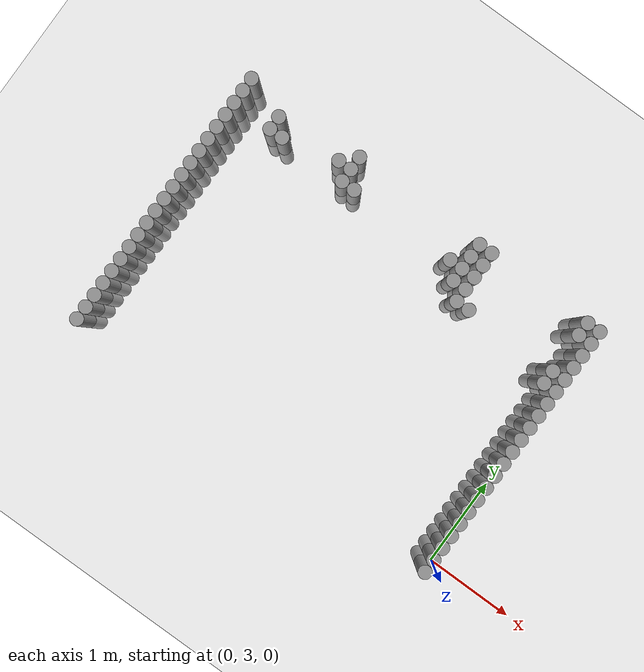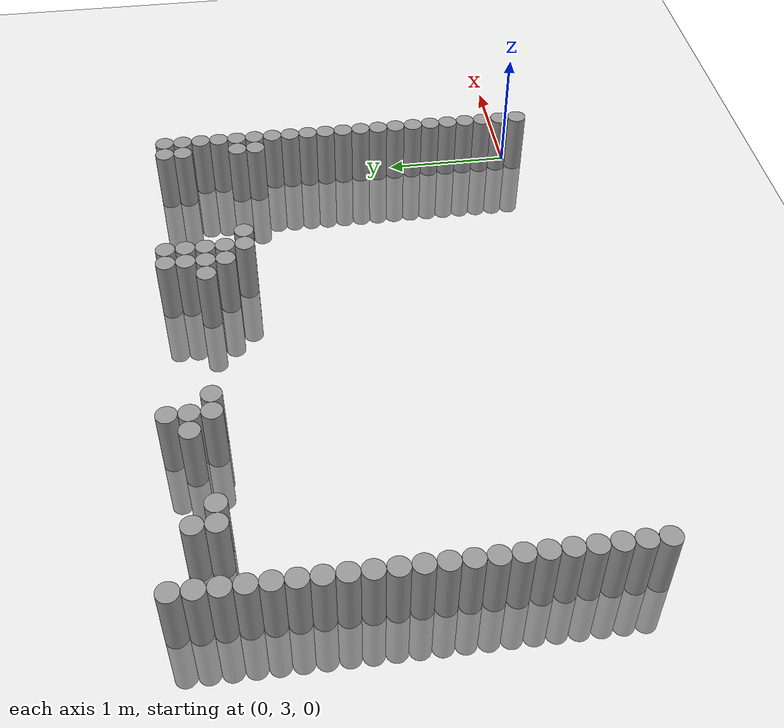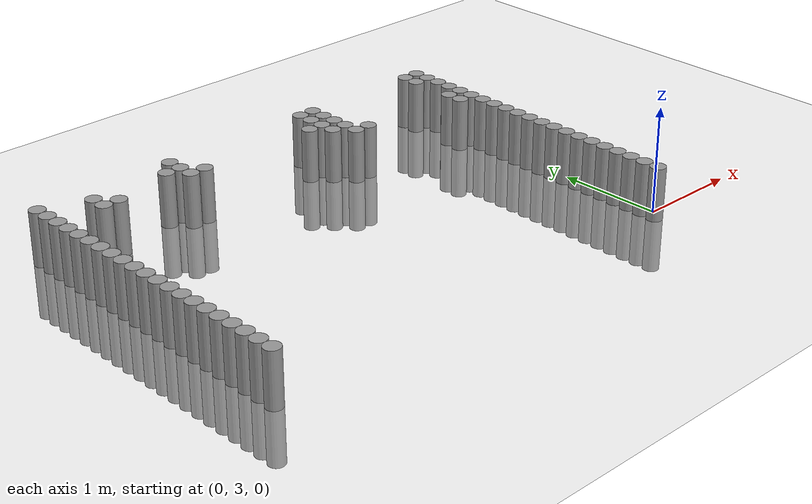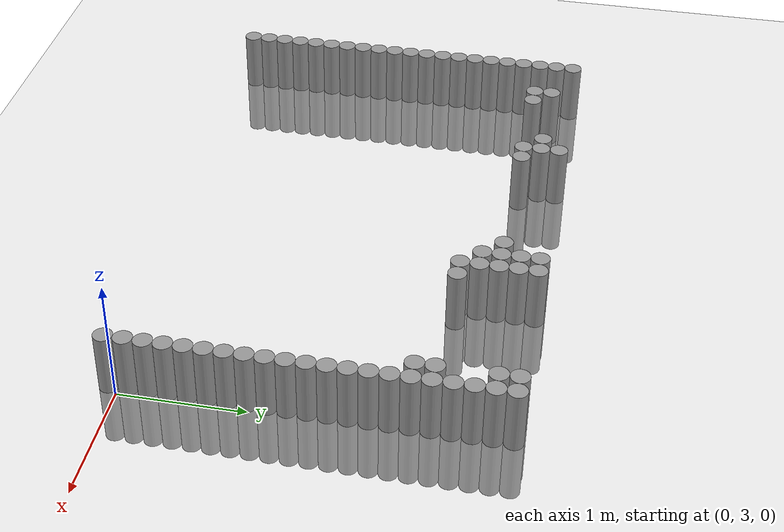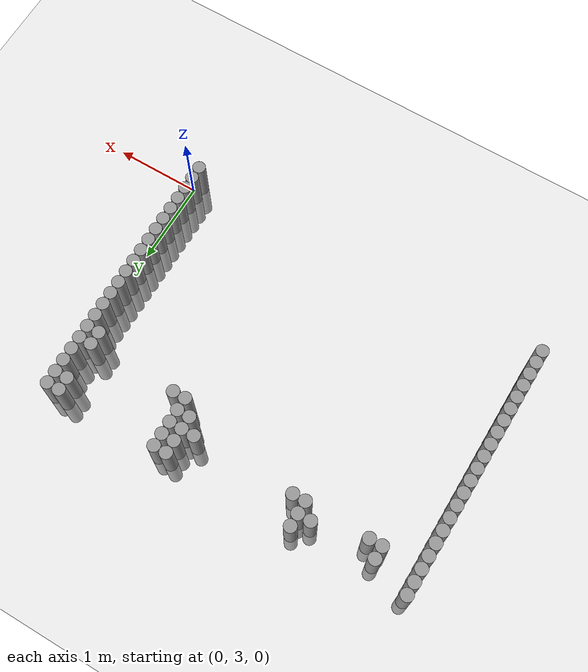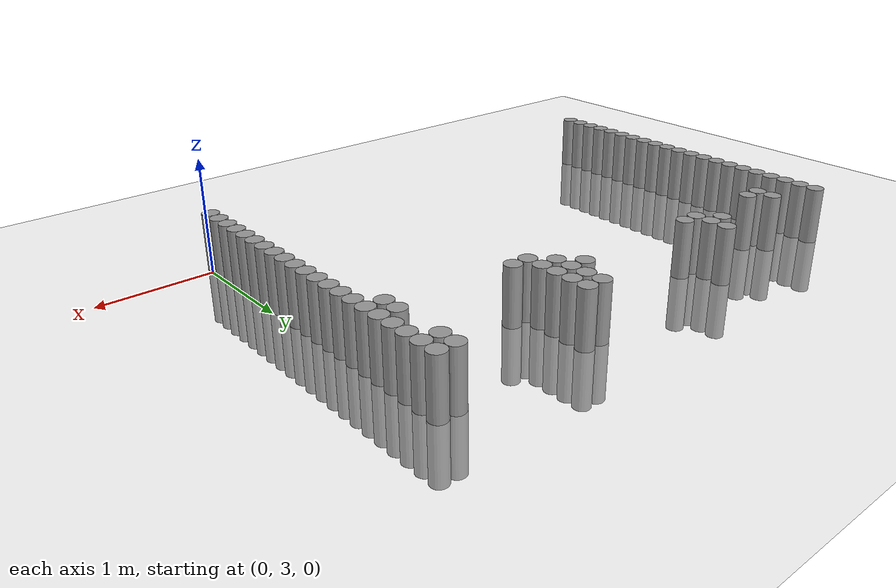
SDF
<sdf version="1.6">
 <world name="default">
  <model name="ground_plane">
   <static>1</static>
   <link name="link">
    <collision name="collision">
     <geometry><plane><normal>0 0 1</normal><size>100 100</size></plane></geometry>
     <surface><friction><ode><mu>100</mu><mu2>50</mu2></ode></friction></surface>
    </collision>
    <visual name="visual">
     <cast_shadows>0</cast_shadows>
     <geometry><plane><normal>0 0 1</normal><size>100 100</size></plane></geometry>
     <material>
      <script><uri>file://media/materials/scripts/gazebo.material</uri><name>Gazebo/Grey</name></script>
     </material>
    </visual>
   </link>
  </model>
  <model name="unit_cylinder_66">
   <pose>-0.075000 2.925000 0.000000 0.000000 0.000000 0.000000</pose>
   <link name="link">
    <inertial>
     <mass>1</mass>
     <inertia><ixx>0.145833</ixx><ixy>0</ixy><ixz>0</ixz><iyy>0.145833</iyy><iyz>0</iyz><izz>0.125</izz></inertia>
    </inertial>
    <collision name="collision">
     <geometry><cylinder><radius>0.075000</radius><length>1</length></cylinder></geometry>
    </collision>
    <visual name="visual">
     <geometry><cylinder><radius>0.075000</radius><length>1</length></cylinder></geometry>
     <material>
      <script><name>Gazebo/Grey</name><uri>file://media/materials/scripts/gazebo.material</uri></script>
     </material>
    </visual>
   </link>
  </model>
  <model name="unit_cylinder_67">
   <pose>-4.425000 2.925000 0.000000 0.000000 0.000000 0.000000</pose>
   <link name="link">
    <inertial>
     <mass>1</mass>
     <inertia><ixx>0.145833</ixx><ixy>0</ixy><ixz>0</ixz><iyy>0.145833</iyy><iyz>0</iyz><izz>0.125</izz></inertia>
    </inertial>
    <collision name="collision">
     <geometry><cylinder><radius>0.075000</radius><length>1</length></cylinder></geometry>
    </collision>
    <visual name="visual">
     <geometry><cylinder><radius>0.075000</radius><length>1</length></cylinder></geometry>
     <material>
      <script><name>Gazebo/Grey</name><uri>file://media/materials/scripts/gazebo.material</uri></script>
     </material>
    </visual>
   </link>
  </model>
  <model name="unit_cylinder_68">
   <pose>-0.075000 3.075000 0.000000 0.000000 0.000000 0.000000</pose>
   <link name="link">
    <inertial>
     <mass>1</mass>
     <inertia><ixx>0.145833</ixx><ixy>0</ixy><ixz>0</ixz><iyy>0.145833</iyy><iyz>0</iyz><izz>0.125</izz></inertia>
    </inertial>
    <collision name="collision">
     <geometry><cylinder><radius>0.075000</radius><length>1</length></cylinder></geometry>
    </collision>
    <visual name="visual">
     <geometry><cylinder><radius>0.075000</radius><length>1</length></cylinder></geometry>
     <material>
      <script><name>Gazebo/Grey</name><uri>file://media/materials/scripts/gazebo.material</uri></script>
     </material>
    </visual>
   </link>
  </model>
  <model name="unit_cylinder_69">
   <pose>-4.425000 3.075000 0.000000 0.000000 0.000000 0.000000</pose>
   <link name="link">
    <inertial>
     <mass>1</mass>
     <inertia><ixx>0.145833</ixx><ixy>0</ixy><ixz>0</ixz><iyy>0.145833</iyy><iyz>0</iyz><izz>0.125</izz></inertia>
    </inertial>
    <collision name="collision">
     <geometry><cylinder><radius>0.075000</radius><length>1</length></cylinder></geometry>
    </collision>
    <visual name="visual">
     <geometry><cylinder><radius>0.075000</radius><length>1</length></cylinder></geometry>
     <material>
      <script><name>Gazebo/Grey</name><uri>file://media/materials/scripts/gazebo.material</uri></script>
     </material>
    </visual>
   </link>
  </model>
  <model name="unit_cylinder_70">
   <pose>-0.075000 3.225000 0.000000 0.000000 0.000000 0.000000</pose>
   <link name="link">
    <inertial>
     <mass>1</mass>
     <inertia><ixx>0.145833</ixx><ixy>0</ixy><ixz>0</ixz><iyy>0.145833</iyy><iyz>0</iyz><izz>0.125</izz></inertia>
    </inertial>
    <collision name="collision">
     <geometry><cylinder><radius>0.075000</radius><length>1</length></cylinder></geometry>
    </collision>
    <visual name="visual">
     <geometry><cylinder><radius>0.075000</radius><length>1</length></cylinder></geometry>
     <material>
      <script><name>Gazebo/Grey</name><uri>file://media/materials/scripts/gazebo.material</uri></script>
     </material>
    </visual>
   </link>
  </model>
  <model name="unit_cylinder_71">
   <pose>-4.425000 3.225000 0.000000 0.000000 0.000000 0.000000</pose>
   <link name="link">
    <inertial>
     <mass>1</mass>
     <inertia><ixx>0.145833</ixx><ixy>0</ixy><ixz>0</ixz><iyy>0.145833</iyy><iyz>0</iyz><izz>0.125</izz></inertia>
    </inertial>
    <collision name="collision">
     <geometry><cylinder><radius>0.075000</radius><length>1</length></cylinder></geometry>
    </collision>
    <visual name="visual">
     <geometry><cylinder><radius>0.075000</radius><length>1</length></cylinder></geometry>
     <material>
      <script><name>Gazebo/Grey</name><uri>file://media/materials/scripts/gazebo.material</uri></script>
     </material>
    </visual>
   </link>
  </model>
  <model name="unit_cylinder_72">
   <pose>-0.075000 3.375000 0.000000 0.000000 0.000000 0.000000</pose>
   <link name="link">
    <inertial>
     <mass>1</mass>
     <inertia><ixx>0.145833</ixx><ixy>0</ixy><ixz>0</ixz><iyy>0.145833</iyy><iyz>0</iyz><izz>0.125</izz></inertia>
    </inertial>
    <collision name="collision">
     <geometry><cylinder><radius>0.075000</radius><length>1</length></cylinder></geometry>
    </collision>
    <visual name="visual">
     <geometry><cylinder><radius>0.075000</radius><length>1</length></cylinder></geometry>
     <material>
      <script><name>Gazebo/Grey</name><uri>file://media/materials/scripts/gazebo.material</uri></script>
     </material>
    </visual>
   </link>
  </model>
  <model name="unit_cylinder_73">
   <pose>-4.425000 3.375000 0.000000 0.000000 0.000000 0.000000</pose>
   <link name="link">
    <inertial>
     <mass>1</mass>
     <inertia><ixx>0.145833</ixx><ixy>0</ixy><ixz>0</ixz><iyy>0.145833</iyy><iyz>0</iyz><izz>0.125</izz></inertia>
    </inertial>
    <collision name="collision">
     <geometry><cylinder><radius>0.075000</radius><length>1</length></cylinder></geometry>
    </collision>
    <visual name="visual">
     <geometry><cylinder><radius>0.075000</radius><length>1</length></cylinder></geometry>
     <material>
      <script><name>Gazebo/Grey</name><uri>file://media/materials/scripts/gazebo.material</uri></script>
     </material>
    </visual>
   </link>
  </model>
  <model name="unit_cylinder_74">
   <pose>-0.075000 3.525000 0.000000 0.000000 0.000000 0.000000</pose>
   <link name="link">
    <inertial>
     <mass>1</mass>
     <inertia><ixx>0.145833</ixx><ixy>0</ixy><ixz>0</ixz><iyy>0.145833</iyy><iyz>0</iyz><izz>0.125</izz></inertia>
    </inertial>
    <collision name="collision">
     <geometry><cylinder><radius>0.075000</radius><length>1</length></cylinder></geometry>
    </collision>
    <visual name="visual">
     <geometry><cylinder><radius>0.075000</radius><length>1</length></cylinder></geometry>
     <material>
      <script><name>Gazebo/Grey</name><uri>file://media/materials/scripts/gazebo.material</uri></script>
     </material>
    </visual>
   </link>
  </model>
  <model name="unit_cylinder_75">
   <pose>-4.425000 3.525000 0.000000 0.000000 0.000000 0.000000</pose>
   <link name="link">
    <inertial>
     <mass>1</mass>
     <inertia><ixx>0.145833</ixx><ixy>0</ixy><ixz>0</ixz><iyy>0.145833</iyy><iyz>0</iyz><izz>0.125</izz></inertia>
    </inertial>
    <collision name="collision">
     <geometry><cylinder><radius>0.075000</radius><length>1</length></cylinder></geometry>
    </collision>
    <visual name="visual">
     <geometry><cylinder><radius>0.075000</radius><length>1</length></cylinder></geometry>
     <material>
      <script><name>Gazebo/Grey</name><uri>file://media/materials/scripts/gazebo.material</uri></script>
     </material>
    </visual>
   </link>
  </model>
  <model name="unit_cylinder_76">
   <pose>-0.075000 3.675000 0.000000 0.000000 0.000000 0.000000</pose>
   <link name="link">
    <inertial>
     <mass>1</mass>
     <inertia><ixx>0.145833</ixx><ixy>0</ixy><ixz>0</ixz><iyy>0.145833</iyy><iyz>0</iyz><izz>0.125</izz></inertia>
    </inertial>
    <collision name="collision">
     <geometry><cylinder><radius>0.075000</radius><length>1</length></cylinder></geometry>
    </collision>
    <visual name="visual">
     <geometry><cylinder><radius>0.075000</radius><length>1</length></cylinder></geometry>
     <material>
      <script><name>Gazebo/Grey</name><uri>file://media/materials/scripts/gazebo.material</uri></script>
     </material>
    </visual>
   </link>
  </model>
  <model name="unit_cylinder_77">
   <pose>-4.425000 3.675000 0.000000 0.000000 0.000000 0.000000</pose>
   <link name="link">
    <inertial>
     <mass>1</mass>
     <inertia><ixx>0.145833</ixx><ixy>0</ixy><ixz>0</ixz><iyy>0.145833</iyy><iyz>0</iyz><izz>0.125</izz></inertia>
    </inertial>
    <collision name="collision">
     <geometry><cylinder><radius>0.075000</radius><length>1</length></cylinder></geometry>
    </collision>
    <visual name="visual">
     <geometry><cylinder><radius>0.075000</radius><length>1</length></cylinder></geometry>
     <material>
      <script><name>Gazebo/Grey</name><uri>file://media/materials/scripts/gazebo.material</uri></script>
     </material>
    </visual>
   </link>
  </model>
  <model name="unit_cylinder_78">
   <pose>-0.075000 3.825000 0.000000 0.000000 0.000000 0.000000</pose>
   <link name="link">
    <inertial>
     <mass>1</mass>
     <inertia><ixx>0.145833</ixx><ixy>0</ixy><ixz>0</ixz><iyy>0.145833</iyy><iyz>0</iyz><izz>0.125</izz></inertia>
    </inertial>
    <collision name="collision">
     <geometry><cylinder><radius>0.075000</radius><length>1</length></cylinder></geometry>
    </collision>
    <visual name="visual">
     <geometry><cylinder><radius>0.075000</radius><length>1</length></cylinder></geometry>
     <material>
      <script><name>Gazebo/Grey</name><uri>file://media/materials/scripts/gazebo.material</uri></script>
     </material>
    </visual>
   </link>
  </model>
  <model name="unit_cylinder_79">
   <pose>-4.425000 3.825000 0.000000 0.000000 0.000000 0.000000</pose>
   <link name="link">
    <inertial>
     <mass>1</mass>
     <inertia><ixx>0.145833</ixx><ixy>0</ixy><ixz>0</ixz><iyy>0.145833</iyy><iyz>0</iyz><izz>0.125</izz></inertia>
    </inertial>
    <collision name="collision">
     <geometry><cylinder><radius>0.075000</radius><length>1</length></cylinder></geometry>
    </collision>
    <visual name="visual">
     <geometry><cylinder><radius>0.075000</radius><length>1</length></cylinder></geometry>
     <material>
      <script><name>Gazebo/Grey</name><uri>file://media/materials/scripts/gazebo.material</uri></script>
     </material>
    </visual>
   </link>
  </model>
  <model name="unit_cylinder_80">
   <pose>-0.075000 3.975000 0.000000 0.000000 0.000000 0.000000</pose>
   <link name="link">
    <inertial>
     <mass>1</mass>
     <inertia><ixx>0.145833</ixx><ixy>0</ixy><ixz>0</ixz><iyy>0.145833</iyy><iyz>0</iyz><izz>0.125</izz></inertia>
    </inertial>
    <collision name="collision">
     <geometry><cylinder><radius>0.075000</radius><length>1</length></cylinder></geometry>
    </collision>
    <visual name="visual">
     <geometry><cylinder><radius>0.075000</radius><length>1</length></cylinder></geometry>
     <material>
      <script><name>Gazebo/Grey</name><uri>file://media/materials/scripts/gazebo.material</uri></script>
     </material>
    </visual>
   </link>
  </model>
  <model name="unit_cylinder_81">
   <pose>-4.425000 3.975000 0.000000 0.000000 0.000000 0.000000</pose>
   <link name="link">
    <inertial>
     <mass>1</mass>
     <inertia><ixx>0.145833</ixx><ixy>0</ixy><ixz>0</ixz><iyy>0.145833</iyy><iyz>0</iyz><izz>0.125</izz></inertia>
    </inertial>
    <collision name="collision">
     <geometry><cylinder><radius>0.075000</radius><length>1</length></cylinder></geometry>
    </collision>
    <visual name="visual">
     <geometry><cylinder><radius>0.075000</radius><length>1</length></cylinder></geometry>
     <material>
      <script><name>Gazebo/Grey</name><uri>file://media/materials/scripts/gazebo.material</uri></script>
     </material>
    </visual>
   </link>
  </model>
  <model name="unit_cylinder_82">
   <pose>-0.075000 4.125000 0.000000 0.000000 0.000000 0.000000</pose>
   <link name="link">
    <inertial>
     <mass>1</mass>
     <inertia><ixx>0.145833</ixx><ixy>0</ixy><ixz>0</ixz><iyy>0.145833</iyy><iyz>0</iyz><izz>0.125</izz></inertia>
    </inertial>
    <collision name="collision">
     <geometry><cylinder><radius>0.075000</radius><length>1</length></cylinder></geometry>
    </collision>
    <visual name="visual">
     <geometry><cylinder><radius>0.075000</radius><length>1</length></cylinder></geometry>
     <material>
      <script><name>Gazebo/Grey</name><uri>file://media/materials/scripts/gazebo.material</uri></script>
     </material>
    </visual>
   </link>
  </model>
  <model name="unit_cylinder_83">
   <pose>-4.425000 4.125000 0.000000 0.000000 0.000000 0.000000</pose>
   <link name="link">
    <inertial>
     <mass>1</mass>
     <inertia><ixx>0.145833</ixx><ixy>0</ixy><ixz>0</ixz><iyy>0.145833</iyy><iyz>0</iyz><izz>0.125</izz></inertia>
    </inertial>
    <collision name="collision">
     <geometry><cylinder><radius>0.075000</radius><length>1</length></cylinder></geometry>
    </collision>
    <visual name="visual">
     <geometry><cylinder><radius>0.075000</radius><length>1</length></cylinder></geometry>
     <material>
      <script><name>Gazebo/Grey</name><uri>file://media/materials/scripts/gazebo.material</uri></script>
     </material>
    </visual>
   </link>
  </model>
  <model name="unit_cylinder_84">
   <pose>-0.075000 4.275000 0.000000 0.000000 0.000000 0.000000</pose>
   <link name="link">
    <inertial>
     <mass>1</mass>
     <inertia><ixx>0.145833</ixx><ixy>0</ixy><ixz>0</ixz><iyy>0.145833</iyy><iyz>0</iyz><izz>0.125</izz></inertia>
    </inertial>
    <collision name="collision">
     <geometry><cylinder><radius>0.075000</radius><length>1</length></cylinder></geometry>
    </collision>
    <visual name="visual">
     <geometry><cylinder><radius>0.075000</radius><length>1</length></cylinder></geometry>
     <material>
      <script><name>Gazebo/Grey</name><uri>file://media/materials/scripts/gazebo.material</uri></script>
     </material>
    </visual>
   </link>
  </model>
  <model name="unit_cylinder_85">
   <pose>-4.425000 4.275000 0.000000 0.000000 0.000000 0.000000</pose>
   <link name="link">
    <inertial>
     <mass>1</mass>
     <inertia><ixx>0.145833</ixx><ixy>0</ixy><ixz>0</ixz><iyy>0.145833</iyy><iyz>0</iyz><izz>0.125</izz></inertia>
    </inertial>
    <collision name="collision">
     <geometry><cylinder><radius>0.075000</radius><length>1</length></cylinder></geometry>
    </collision>
    <visual name="visual">
     <geometry><cylinder><radius>0.075000</radius><length>1</length></cylinder></geometry>
     <material>
      <script><name>Gazebo/Grey</name><uri>file://media/materials/scripts/gazebo.material</uri></script>
     </material>
    </visual>
   </link>
  </model>
  <model name="unit_cylinder_86">
   <pose>-0.075000 4.425000 0.000000 0.000000 0.000000 0.000000</pose>
   <link name="link">
    <inertial>
     <mass>1</mass>
     <inertia><ixx>0.145833</ixx><ixy>0</ixy><ixz>0</ixz><iyy>0.145833</iyy><iyz>0</iyz><izz>0.125</izz></inertia>
    </inertial>
    <collision name="collision">
     <geometry><cylinder><radius>0.075000</radius><length>1</length></cylinder></geometry>
    </collision>
    <visual name="visual">
     <geometry><cylinder><radius>0.075000</radius><length>1</length></cylinder></geometry>
     <material>
      <script><name>Gazebo/Grey</name><uri>file://media/materials/scripts/gazebo.material</uri></script>
     </material>
    </visual>
   </link>
  </model>
  <model name="unit_cylinder_87">
   <pose>-4.425000 4.425000 0.000000 0.000000 0.000000 0.000000</pose>
   <link name="link">
    <inertial>
     <mass>1</mass>
     <inertia><ixx>0.145833</ixx><ixy>0</ixy><ixz>0</ixz><iyy>0.145833</iyy><iyz>0</iyz><izz>0.125</izz></inertia>
    </inertial>
    <collision name="collision">
     <geometry><cylinder><radius>0.075000</radius><length>1</length></cylinder></geometry>
    </collision>
    <visual name="visual">
     <geometry><cylinder><radius>0.075000</radius><length>1</length></cylinder></geometry>
     <material>
      <script><name>Gazebo/Grey</name><uri>file://media/materials/scripts/gazebo.material</uri></script>
     </material>
    </visual>
   </link>
  </model>
  <model name="unit_cylinder_88">
   <pose>-0.075000 4.575000 0.000000 0.000000 0.000000 0.000000</pose>
   <link name="link">
    <inertial>
     <mass>1</mass>
     <inertia><ixx>0.145833</ixx><ixy>0</ixy><ixz>0</ixz><iyy>0.145833</iyy><iyz>0</iyz><izz>0.125</izz></inertia>
    </inertial>
    <collision name="collision">
     <geometry><cylinder><radius>0.075000</radius><length>1</length></cylinder></geometry>
    </collision>
    <visual name="visual">
     <geometry><cylinder><radius>0.075000</radius><length>1</length></cylinder></geometry>
     <material>
      <script><name>Gazebo/Grey</name><uri>file://media/materials/scripts/gazebo.material</uri></script>
     </material>
    </visual>
   </link>
  </model>
  <model name="unit_cylinder_89">
   <pose>-4.425000 4.575000 0.000000 0.000000 0.000000 0.000000</pose>
   <link name="link">
    <inertial>
     <mass>1</mass>
     <inertia><ixx>0.145833</ixx><ixy>0</ixy><ixz>0</ixz><iyy>0.145833</iyy><iyz>0</iyz><izz>0.125</izz></inertia>
    </inertial>
    <collision name="collision">
     <geometry><cylinder><radius>0.075000</radius><length>1</length></cylinder></geometry>
    </collision>
    <visual name="visual">
     <geometry><cylinder><radius>0.075000</radius><length>1</length></cylinder></geometry>
     <material>
      <script><name>Gazebo/Grey</name><uri>file://media/materials/scripts/gazebo.material</uri></script>
     </material>
    </visual>
   </link>
  </model>
  <model name="unit_cylinder_90">
   <pose>-0.075000 4.725000 0.000000 0.000000 0.000000 0.000000</pose>
   <link name="link">
    <inertial>
     <mass>1</mass>
     <inertia><ixx>0.145833</ixx><ixy>0</ixy><ixz>0</ixz><iyy>0.145833</iyy><iyz>0</iyz><izz>0.125</izz></inertia>
    </inertial>
    <collision name="collision">
     <geometry><cylinder><radius>0.075000</radius><length>1</length></cylinder></geometry>
    </collision>
    <visual name="visual">
     <geometry><cylinder><radius>0.075000</radius><length>1</length></cylinder></geometry>
     <material>
      <script><name>Gazebo/Grey</name><uri>file://media/materials/scripts/gazebo.material</uri></script>
     </material>
    </visual>
   </link>
  </model>
  <model name="unit_cylinder_91">
   <pose>-4.425000 4.725000 0.000000 0.000000 0.000000 0.000000</pose>
   <link name="link">
    <inertial>
     <mass>1</mass>
     <inertia><ixx>0.145833</ixx><ixy>0</ixy><ixz>0</ixz><iyy>0.145833</iyy><iyz>0</iyz><izz>0.125</izz></inertia>
    </inertial>
    <collision name="collision">
     <geometry><cylinder><radius>0.075000</radius><length>1</length></cylinder></geometry>
    </collision>
    <visual name="visual">
     <geometry><cylinder><radius>0.075000</radius><length>1</length></cylinder></geometry>
     <material>
      <script><name>Gazebo/Grey</name><uri>file://media/materials/scripts/gazebo.material</uri></script>
     </material>
    </visual>
   </link>
  </model>
  <model name="unit_cylinder_92">
   <pose>-0.075000 4.875000 0.000000 0.000000 0.000000 0.000000</pose>
   <link name="link">
    <inertial>
     <mass>1</mass>
     <inertia><ixx>0.145833</ixx><ixy>0</ixy><ixz>0</ixz><iyy>0.145833</iyy><iyz>0</iyz><izz>0.125</izz></inertia>
    </inertial>
    <collision name="collision">
     <geometry><cylinder><radius>0.075000</radius><length>1</length></cylinder></geometry>
    </collision>
    <visual name="visual">
     <geometry><cylinder><radius>0.075000</radius><length>1</length></cylinder></geometry>
     <material>
      <script><name>Gazebo/Grey</name><uri>file://media/materials/scripts/gazebo.material</uri></script>
     </material>
    </visual>
   </link>
  </model>
  <model name="unit_cylinder_93">
   <pose>-4.425000 4.875000 0.000000 0.000000 0.000000 0.000000</pose>
   <link name="link">
    <inertial>
     <mass>1</mass>
     <inertia><ixx>0.145833</ixx><ixy>0</ixy><ixz>0</ixz><iyy>0.145833</iyy><iyz>0</iyz><izz>0.125</izz></inertia>
    </inertial>
    <collision name="collision">
     <geometry><cylinder><radius>0.075000</radius><length>1</length></cylinder></geometry>
    </collision>
    <visual name="visual">
     <geometry><cylinder><radius>0.075000</radius><length>1</length></cylinder></geometry>
     <material>
      <script><name>Gazebo/Grey</name><uri>file://media/materials/scripts/gazebo.material</uri></script>
     </material>
    </visual>
   </link>
  </model>
  <model name="unit_cylinder_94">
   <pose>-0.075000 5.025000 0.000000 0.000000 0.000000 0.000000</pose>
   <link name="link">
    <inertial>
     <mass>1</mass>
     <inertia><ixx>0.145833</ixx><ixy>0</ixy><ixz>0</ixz><iyy>0.145833</iyy><iyz>0</iyz><izz>0.125</izz></inertia>
    </inertial>
    <collision name="collision">
     <geometry><cylinder><radius>0.075000</radius><length>1</length></cylinder></geometry>
    </collision>
    <visual name="visual">
     <geometry><cylinder><radius>0.075000</radius><length>1</length></cylinder></geometry>
     <material>
      <script><name>Gazebo/Grey</name><uri>file://media/materials/scripts/gazebo.material</uri></script>
     </material>
    </visual>
   </link>
  </model>
  <model name="unit_cylinder_95">
   <pose>-4.425000 5.025000 0.000000 0.000000 0.000000 0.000000</pose>
   <link name="link">
    <inertial>
     <mass>1</mass>
     <inertia><ixx>0.145833</ixx><ixy>0</ixy><ixz>0</ixz><iyy>0.145833</iyy><iyz>0</iyz><izz>0.125</izz></inertia>
    </inertial>
    <collision name="collision">
     <geometry><cylinder><radius>0.075000</radius><length>1</length></cylinder></geometry>
    </collision>
    <visual name="visual">
     <geometry><cylinder><radius>0.075000</radius><length>1</length></cylinder></geometry>
     <material>
      <script><name>Gazebo/Grey</name><uri>file://media/materials/scripts/gazebo.material</uri></script>
     </material>
    </visual>
   </link>
  </model>
  <model name="unit_cylinder_96">
   <pose>-4.425000 5.175000 0.000000 0.000000 0.000000 0.000000</pose>
   <link name="link">
    <inertial>
     <mass>1</mass>
     <inertia><ixx>0.145833</ixx><ixy>0</ixy><ixz>0</ixz><iyy>0.145833</iyy><iyz>0</iyz><izz>0.125</izz></inertia>
    </inertial>
    <collision name="collision">
     <geometry><cylinder><radius>0.075000</radius><length>1</length></cylinder></geometry>
    </collision>
    <visual name="visual">
     <geometry><cylinder><radius>0.075000</radius><length>1</length></cylinder></geometry>
     <material>
      <script><name>Gazebo/Grey</name><uri>file://media/materials/scripts/gazebo.material</uri></script>
     </material>
    </visual>
   </link>
  </model>
  <model name="unit_cylinder_97">
   <pose>-4.425000 5.325000 0.000000 0.000000 0.000000 0.000000</pose>
   <link name="link">
    <inertial>
     <mass>1</mass>
     <inertia><ixx>0.145833</ixx><ixy>0</ixy><ixz>0</ixz><iyy>0.145833</iyy><iyz>0</iyz><izz>0.125</izz></inertia>
    </inertial>
    <collision name="collision">
     <geometry><cylinder><radius>0.075000</radius><length>1</length></cylinder></geometry>
    </collision>
    <visual name="visual">
     <geometry><cylinder><radius>0.075000</radius><length>1</length></cylinder></geometry>
     <material>
      <script><name>Gazebo/Grey</name><uri>file://media/materials/scripts/gazebo.material</uri></script>
     </material>
    </visual>
   </link>
  </model>
  <model name="unit_cylinder_98">
   <pose>-4.425000 5.475000 0.000000 0.000000 0.000000 0.000000</pose>
   <link name="link">
    <inertial>
     <mass>1</mass>
     <inertia><ixx>0.145833</ixx><ixy>0</ixy><ixz>0</ixz><iyy>0.145833</iyy><iyz>0</iyz><izz>0.125</izz></inertia>
    </inertial>
    <collision name="collision">
     <geometry><cylinder><radius>0.075000</radius><length>1</length></cylinder></geometry>
    </collision>
    <visual name="visual">
     <geometry><cylinder><radius>0.075000</radius><length>1</length></cylinder></geometry>
     <material>
      <script><name>Gazebo/Grey</name><uri>file://media/materials/scripts/gazebo.material</uri></script>
     </material>
    </visual>
   </link>
  </model>
  <model name="unit_cylinder_99">
   <pose>-4.425000 5.625000 0.000000 0.000000 0.000000 0.000000</pose>
   <link name="link">
    <inertial>
     <mass>1</mass>
     <inertia><ixx>0.145833</ixx><ixy>0</ixy><ixz>0</ixz><iyy>0.145833</iyy><iyz>0</iyz><izz>0.125</izz></inertia>
    </inertial>
    <collision name="collision">
     <geometry><cylinder><radius>0.075000</radius><length>1</length></cylinder></geometry>
    </collision>
    <visual name="visual">
     <geometry><cylinder><radius>0.075000</radius><length>1</length></cylinder></geometry>
     <material>
      <script><name>Gazebo/Grey</name><uri>file://media/materials/scripts/gazebo.material</uri></script>
     </material>
    </visual>
   </link>
  </model>
  <model name="unit_cylinder_100">
   <pose>-4.425000 5.775000 0.000000 0.000000 0.000000 0.000000</pose>
   <link name="link">
    <inertial>
     <mass>1</mass>
     <inertia><ixx>0.145833</ixx><ixy>0</ixy><ixz>0</ixz><iyy>0.145833</iyy><iyz>0</iyz><izz>0.125</izz></inertia>
    </inertial>
    <collision name="collision">
     <geometry><cylinder><radius>0.075000</radius><length>1</length></cylinder></geometry>
    </collision>
    <visual name="visual">
     <geometry><cylinder><radius>0.075000</radius><length>1</length></cylinder></geometry>
     <material>
      <script><name>Gazebo/Grey</name><uri>file://media/materials/scripts/gazebo.material</uri></script>
     </material>
    </visual>
   </link>
  </model>
  <model name="unit_cylinder_101">
   <pose>-4.425000 5.925000 0.000000 0.000000 0.000000 0.000000</pose>
   <link name="link">
    <inertial>
     <mass>1</mass>
     <inertia><ixx>0.145833</ixx><ixy>0</ixy><ixz>0</ixz><iyy>0.145833</iyy><iyz>0</iyz><izz>0.125</izz></inertia>
    </inertial>
    <collision name="collision">
     <geometry><cylinder><radius>0.075000</radius><length>1</length></cylinder></geometry>
    </collision>
    <visual name="visual">
     <geometry><cylinder><radius>0.075000</radius><length>1</length></cylinder></geometry>
     <material>
      <script><name>Gazebo/Grey</name><uri>file://media/materials/scripts/gazebo.material</uri></script>
     </material>
    </visual>
   </link>
  </model>
  <model name="unit_cylinder_145">
   <pose>-3.975000 5.625000 0.000000 0.000000 0.000000 0.000000</pose>
   <link name="link">
    <inertial>
     <mass>1</mass>
     <inertia><ixx>0.145833</ixx><ixy>0</ixy><ixz>0</ixz><iyy>0.145833</iyy><iyz>0</iyz><izz>0.125</izz></inertia>
    </inertial>
    <collision name="collision">
     <geometry><cylinder><radius>0.075000</radius><length>1</length></cylinder></geometry>
    </collision>
    <visual name="visual">
     <geometry><cylinder><radius>0.075000</radius><length>1</length></cylinder></geometry>
     <material>
      <script><name>Gazebo/Grey</name><uri>file://media/materials/scripts/gazebo.material</uri></script>
     </material>
    </visual>
   </link>
  </model>
  <model name="unit_cylinder_146">
   <pose>-3.975000 5.775000 0.000000 0.000000 0.000000 0.000000</pose>
   <link name="link">
    <inertial>
     <mass>1</mass>
     <inertia><ixx>0.145833</ixx><ixy>0</ixy><ixz>0</ixz><iyy>0.145833</iyy><iyz>0</iyz><izz>0.125</izz></inertia>
    </inertial>
    <collision name="collision">
     <geometry><cylinder><radius>0.075000</radius><length>1</length></cylinder></geometry>
    </collision>
    <visual name="visual">
     <geometry><cylinder><radius>0.075000</radius><length>1</length></cylinder></geometry>
     <material>
      <script><name>Gazebo/Grey</name><uri>file://media/materials/scripts/gazebo.material</uri></script>
     </material>
    </visual>
   </link>
  </model>
  <model name="unit_cylinder_148">
   <pose>-3.825000 5.625000 0.000000 0.000000 0.000000 0.000000</pose>
   <link name="link">
    <inertial>
     <mass>1</mass>
     <inertia><ixx>0.145833</ixx><ixy>0</ixy><ixz>0</ixz><iyy>0.145833</iyy><iyz>0</iyz><izz>0.125</izz></inertia>
    </inertial>
    <collision name="collision">
     <geometry><cylinder><radius>0.075000</radius><length>1</length></cylinder></geometry>
    </collision>
    <visual name="visual">
     <geometry><cylinder><radius>0.075000</radius><length>1</length></cylinder></geometry>
     <material>
      <script><name>Gazebo/Grey</name><uri>file://media/materials/scripts/gazebo.material</uri></script>
     </material>
    </visual>
   </link>
  </model>
  <model name="unit_cylinder_159">
   <pose>-3.225000 5.775000 0.000000 0.000000 0.000000 0.000000</pose>
   <link name="link">
    <inertial>
     <mass>1</mass>
     <inertia><ixx>0.145833</ixx><ixy>0</ixy><ixz>0</ixz><iyy>0.145833</iyy><iyz>0</iyz><izz>0.125</izz></inertia>
    </inertial>
    <collision name="collision">
     <geometry><cylinder><radius>0.075000</radius><length>1</length></cylinder></geometry>
    </collision>
    <visual name="visual">
     <geometry><cylinder><radius>0.075000</radius><length>1</length></cylinder></geometry>
     <material>
      <script><name>Gazebo/Grey</name><uri>file://media/materials/scripts/gazebo.material</uri></script>
     </material>
    </visual>
   </link>
  </model>
  <model name="unit_cylinder_165">
   <pose>-3.075000 5.625000 0.000000 0.000000 0.000000 0.000000</pose>
   <link name="link">
    <inertial>
     <mass>1</mass>
     <inertia><ixx>0.145833</ixx><ixy>0</ixy><ixz>0</ixz><iyy>0.145833</iyy><iyz>0</iyz><izz>0.125</izz></inertia>
    </inertial>
    <collision name="collision">
     <geometry><cylinder><radius>0.075000</radius><length>1</length></cylinder></geometry>
    </collision>
    <visual name="visual">
     <geometry><cylinder><radius>0.075000</radius><length>1</length></cylinder></geometry>
     <material>
      <script><name>Gazebo/Grey</name><uri>file://media/materials/scripts/gazebo.material</uri></script>
     </material>
    </visual>
   </link>
  </model>
  <model name="unit_cylinder_166">
   <pose>-3.075000 5.775000 0.000000 0.000000 0.000000 0.000000</pose>
   <link name="link">
    <inertial>
     <mass>1</mass>
     <inertia><ixx>0.145833</ixx><ixy>0</ixy><ixz>0</ixz><iyy>0.145833</iyy><iyz>0</iyz><izz>0.125</izz></inertia>
    </inertial>
    <collision name="collision">
     <geometry><cylinder><radius>0.075000</radius><length>1</length></cylinder></geometry>
    </collision>
    <visual name="visual">
     <geometry><cylinder><radius>0.075000</radius><length>1</length></cylinder></geometry>
     <material>
      <script><name>Gazebo/Grey</name><uri>file://media/materials/scripts/gazebo.material</uri></script>
     </material>
    </visual>
   </link>
  </model>
  <model name="unit_cylinder_167">
   <pose>-3.075000 5.925000 0.000000 0.000000 0.000000 0.000000</pose>
   <link name="link">
    <inertial>
     <mass>1</mass>
     <inertia><ixx>0.145833</ixx><ixy>0</ixy><ixz>0</ixz><iyy>0.145833</iyy><iyz>0</iyz><izz>0.125</izz></inertia>
    </inertial>
    <collision name="collision">
     <geometry><cylinder><radius>0.075000</radius><length>1</length></cylinder></geometry>
    </collision>
    <visual name="visual">
     <geometry><cylinder><radius>0.075000</radius><length>1</length></cylinder></geometry>
     <material>
      <script><name>Gazebo/Grey</name><uri>file://media/materials/scripts/gazebo.material</uri></script>
     </material>
    </visual>
   </link>
  </model>
  <model name="unit_cylinder_170">
   <pose>-2.925000 5.625000 0.000000 0.000000 0.000000 0.000000</pose>
   <link name="link">
    <inertial>
     <mass>1</mass>
     <inertia><ixx>0.145833</ixx><ixy>0</ixy><ixz>0</ixz><iyy>0.145833</iyy><iyz>0</iyz><izz>0.125</izz></inertia>
    </inertial>
    <collision name="collision">
     <geometry><cylinder><radius>0.075000</radius><length>1</length></cylinder></geometry>
    </collision>
    <visual name="visual">
     <geometry><cylinder><radius>0.075000</radius><length>1</length></cylinder></geometry>
     <material>
      <script><name>Gazebo/Grey</name><uri>file://media/materials/scripts/gazebo.material</uri></script>
     </material>
    </visual>
   </link>
  </model>
  <model name="unit_cylinder_178">
   <pose>-1.725000 5.625000 0.000000 0.000000 0.000000 0.000000</pose>
   <link name="link">
    <inertial>
     <mass>1</mass>
     <inertia><ixx>0.145833</ixx><ixy>0</ixy><ixz>0</ixz><iyy>0.145833</iyy><iyz>0</iyz><izz>0.125</izz></inertia>
    </inertial>
    <collision name="collision">
     <geometry><cylinder><radius>0.075000</radius><length>1</length></cylinder></geometry>
    </collision>
    <visual name="visual">
     <geometry><cylinder><radius>0.075000</radius><length>1</length></cylinder></geometry>
     <material>
      <script><name>Gazebo/Grey</name><uri>file://media/materials/scripts/gazebo.material</uri></script>
     </material>
    </visual>
   </link>
  </model>
  <model name="unit_cylinder_183">
   <pose>-1.575000 5.475000 0.000000 0.000000 0.000000 0.000000</pose>
   <link name="link">
    <inertial>
     <mass>1</mass>
     <inertia><ixx>0.145833</ixx><ixy>0</ixy><ixz>0</ixz><iyy>0.145833</iyy><iyz>0</iyz><izz>0.125</izz></inertia>
    </inertial>
    <collision name="collision">
     <geometry><cylinder><radius>0.075000</radius><length>1</length></cylinder></geometry>
    </collision>
    <visual name="visual">
     <geometry><cylinder><radius>0.075000</radius><length>1</length></cylinder></geometry>
     <material>
      <script><name>Gazebo/Grey</name><uri>file://media/materials/scripts/gazebo.material</uri></script>
     </material>
    </visual>
   </link>
  </model>
  <model name="unit_cylinder_184">
   <pose>-1.575000 5.625000 0.000000 0.000000 0.000000 0.000000</pose>
   <link name="link">
    <inertial>
     <mass>1</mass>
     <inertia><ixx>0.145833</ixx><ixy>0</ixy><ixz>0</ixz><iyy>0.145833</iyy><iyz>0</iyz><izz>0.125</izz></inertia>
    </inertial>
    <collision name="collision">
     <geometry><cylinder><radius>0.075000</radius><length>1</length></cylinder></geometry>
    </collision>
    <visual name="visual">
     <geometry><cylinder><radius>0.075000</radius><length>1</length></cylinder></geometry>
     <material>
      <script><name>Gazebo/Grey</name><uri>file://media/materials/scripts/gazebo.material</uri></script>
     </material>
    </visual>
   </link>
  </model>
  <model name="unit_cylinder_185">
   <pose>-1.575000 5.775000 0.000000 0.000000 0.000000 0.000000</pose>
   <link name="link">
    <inertial>
     <mass>1</mass>
     <inertia><ixx>0.145833</ixx><ixy>0</ixy><ixz>0</ixz><iyy>0.145833</iyy><iyz>0</iyz><izz>0.125</izz></inertia>
    </inertial>
    <collision name="collision">
     <geometry><cylinder><radius>0.075000</radius><length>1</length></cylinder></geometry>
    </collision>
    <visual name="visual">
     <geometry><cylinder><radius>0.075000</radius><length>1</length></cylinder></geometry>
     <material>
      <script><name>Gazebo/Grey</name><uri>file://media/materials/scripts/gazebo.material</uri></script>
     </material>
    </visual>
   </link>
  </model>
  <model name="unit_cylinder_186">
   <pose>-1.575000 5.925000 0.000000 0.000000 0.000000 0.000000</pose>
   <link name="link">
    <inertial>
     <mass>1</mass>
     <inertia><ixx>0.145833</ixx><ixy>0</ixy><ixz>0</ixz><iyy>0.145833</iyy><iyz>0</iyz><izz>0.125</izz></inertia>
    </inertial>
    <collision name="collision">
     <geometry><cylinder><radius>0.075000</radius><length>1</length></cylinder></geometry>
    </collision>
    <visual name="visual">
     <geometry><cylinder><radius>0.075000</radius><length>1</length></cylinder></geometry>
     <material>
      <script><name>Gazebo/Grey</name><uri>file://media/materials/scripts/gazebo.material</uri></script>
     </material>
    </visual>
   </link>
  </model>
  <model name="unit_cylinder_192">
   <pose>-1.425000 5.325000 0.000000 0.000000 0.000000 0.000000</pose>
   <link name="link">
    <inertial>
     <mass>1</mass>
     <inertia><ixx>0.145833</ixx><ixy>0</ixy><ixz>0</ixz><iyy>0.145833</iyy><iyz>0</iyz><izz>0.125</izz></inertia>
    </inertial>
    <collision name="collision">
     <geometry><cylinder><radius>0.075000</radius><length>1</length></cylinder></geometry>
    </collision>
    <visual name="visual">
     <geometry><cylinder><radius>0.075000</radius><length>1</length></cylinder></geometry>
     <material>
      <script><name>Gazebo/Grey</name><uri>file://media/materials/scripts/gazebo.material</uri></script>
     </material>
    </visual>
   </link>
  </model>
  <model name="unit_cylinder_193">
   <pose>-1.425000 5.475000 0.000000 0.000000 0.000000 0.000000</pose>
   <link name="link">
    <inertial>
     <mass>1</mass>
     <inertia><ixx>0.145833</ixx><ixy>0</ixy><ixz>0</ixz><iyy>0.145833</iyy><iyz>0</iyz><izz>0.125</izz></inertia>
    </inertial>
    <collision name="collision">
     <geometry><cylinder><radius>0.075000</radius><length>1</length></cylinder></geometry>
    </collision>
    <visual name="visual">
     <geometry><cylinder><radius>0.075000</radius><length>1</length></cylinder></geometry>
     <material>
      <script><name>Gazebo/Grey</name><uri>file://media/materials/scripts/gazebo.material</uri></script>
     </material>
    </visual>
   </link>
  </model>
  <model name="unit_cylinder_194">
   <pose>-1.425000 5.625000 0.000000 0.000000 0.000000 0.000000</pose>
   <link name="link">
    <inertial>
     <mass>1</mass>
     <inertia><ixx>0.145833</ixx><ixy>0</ixy><ixz>0</ixz><iyy>0.145833</iyy><iyz>0</iyz><izz>0.125</izz></inertia>
    </inertial>
    <collision name="collision">
     <geometry><cylinder><radius>0.075000</radius><length>1</length></cylinder></geometry>
    </collision>
    <visual name="visual">
     <geometry><cylinder><radius>0.075000</radius><length>1</length></cylinder></geometry>
     <material>
      <script><name>Gazebo/Grey</name><uri>file://media/materials/scripts/gazebo.material</uri></script>
     </material>
    </visual>
   </link>
  </model>
  <model name="unit_cylinder_195">
   <pose>-1.425000 5.775000 0.000000 0.000000 0.000000 0.000000</pose>
   <link name="link">
    <inertial>
     <mass>1</mass>
     <inertia><ixx>0.145833</ixx><ixy>0</ixy><ixz>0</ixz><iyy>0.145833</iyy><iyz>0</iyz><izz>0.125</izz></inertia>
    </inertial>
    <collision name="collision">
     <geometry><cylinder><radius>0.075000</radius><length>1</length></cylinder></geometry>
    </collision>
    <visual name="visual">
     <geometry><cylinder><radius>0.075000</radius><length>1</length></cylinder></geometry>
     <material>
      <script><name>Gazebo/Grey</name><uri>file://media/materials/scripts/gazebo.material</uri></script>
     </material>
    </visual>
   </link>
  </model>
  <model name="unit_cylinder_196">
   <pose>-1.425000 5.925000 0.000000 0.000000 0.000000 0.000000</pose>
   <link name="link">
    <inertial>
     <mass>1</mass>
     <inertia><ixx>0.145833</ixx><ixy>0</ixy><ixz>0</ixz><iyy>0.145833</iyy><iyz>0</iyz><izz>0.125</izz></inertia>
    </inertial>
    <collision name="collision">
     <geometry><cylinder><radius>0.075000</radius><length>1</length></cylinder></geometry>
    </collision>
    <visual name="visual">
     <geometry><cylinder><radius>0.075000</radius><length>1</length></cylinder></geometry>
     <material>
      <script><name>Gazebo/Grey</name><uri>file://media/materials/scripts/gazebo.material</uri></script>
     </material>
    </visual>
   </link>
  </model>
  <model name="unit_cylinder_199">
   <pose>-1.275000 5.325000 0.000000 0.000000 0.000000 0.000000</pose>
   <link name="link">
    <inertial>
     <mass>1</mass>
     <inertia><ixx>0.145833</ixx><ixy>0</ixy><ixz>0</ixz><iyy>0.145833</iyy><iyz>0</iyz><izz>0.125</izz></inertia>
    </inertial>
    <collision name="collision">
     <geometry><cylinder><radius>0.075000</radius><length>1</length></cylinder></geometry>
    </collision>
    <visual name="visual">
     <geometry><cylinder><radius>0.075000</radius><length>1</length></cylinder></geometry>
     <material>
      <script><name>Gazebo/Grey</name><uri>file://media/materials/scripts/gazebo.material</uri></script>
     </material>
    </visual>
   </link>
  </model>
  <model name="unit_cylinder_210">
   <pose>-0.225000 5.175000 0.000000 0.000000 0.000000 0.000000</pose>
   <link name="link">
    <inertial>
     <mass>1</mass>
     <inertia><ixx>0.145833</ixx><ixy>0</ixy><ixz>0</ixz><iyy>0.145833</iyy><iyz>0</iyz><izz>0.125</izz></inertia>
    </inertial>
    <collision name="collision">
     <geometry><cylinder><radius>0.075000</radius><length>1</length></cylinder></geometry>
    </collision>
    <visual name="visual">
     <geometry><cylinder><radius>0.075000</radius><length>1</length></cylinder></geometry>
     <material>
      <script><name>Gazebo/Grey</name><uri>file://media/materials/scripts/gazebo.material</uri></script>
     </material>
    </visual>
   </link>
  </model>
  <model name="unit_cylinder_211">
   <pose>-0.225000 5.325000 0.000000 0.000000 0.000000 0.000000</pose>
   <link name="link">
    <inertial>
     <mass>1</mass>
     <inertia><ixx>0.145833</ixx><ixy>0</ixy><ixz>0</ixz><iyy>0.145833</iyy><iyz>0</iyz><izz>0.125</izz></inertia>
    </inertial>
    <collision name="collision">
     <geometry><cylinder><radius>0.075000</radius><length>1</length></cylinder></geometry>
    </collision>
    <visual name="visual">
     <geometry><cylinder><radius>0.075000</radius><length>1</length></cylinder></geometry>
     <material>
      <script><name>Gazebo/Grey</name><uri>file://media/materials/scripts/gazebo.material</uri></script>
     </material>
    </visual>
   </link>
  </model>
  <model name="unit_cylinder_212">
   <pose>-0.225000 5.775000 0.000000 0.000000 0.000000 0.000000</pose>
   <link name="link">
    <inertial>
     <mass>1</mass>
     <inertia><ixx>0.145833</ixx><ixy>0</ixy><ixz>0</ixz><iyy>0.145833</iyy><iyz>0</iyz><izz>0.125</izz></inertia>
    </inertial>
    <collision name="collision">
     <geometry><cylinder><radius>0.075000</radius><length>1</length></cylinder></geometry>
    </collision>
    <visual name="visual">
     <geometry><cylinder><radius>0.075000</radius><length>1</length></cylinder></geometry>
     <material>
      <script><name>Gazebo/Grey</name><uri>file://media/materials/scripts/gazebo.material</uri></script>
     </material>
    </visual>
   </link>
  </model>
  <model name="unit_cylinder_213">
   <pose>-0.225000 5.925000 0.000000 0.000000 0.000000 0.000000</pose>
   <link name="link">
    <inertial>
     <mass>1</mass>
     <inertia><ixx>0.145833</ixx><ixy>0</ixy><ixz>0</ixz><iyy>0.145833</iyy><iyz>0</iyz><izz>0.125</izz></inertia>
    </inertial>
    <collision name="collision">
     <geometry><cylinder><radius>0.075000</radius><length>1</length></cylinder></geometry>
    </collision>
    <visual name="visual">
     <geometry><cylinder><radius>0.075000</radius><length>1</length></cylinder></geometry>
     <material>
      <script><name>Gazebo/Grey</name><uri>file://media/materials/scripts/gazebo.material</uri></script>
     </material>
    </visual>
   </link>
  </model>
  <model name="unit_cylinder_232">
   <pose>-0.075000 5.175000 0.000000 0.000000 0.000000 0.000000</pose>
   <link name="link">
    <inertial>
     <mass>1</mass>
     <inertia><ixx>0.145833</ixx><ixy>0</ixy><ixz>0</ixz><iyy>0.145833</iyy><iyz>0</iyz><izz>0.125</izz></inertia>
    </inertial>
    <collision name="collision">
     <geometry><cylinder><radius>0.075000</radius><length>1</length></cylinder></geometry>
    </collision>
    <visual name="visual">
     <geometry><cylinder><radius>0.075000</radius><length>1</length></cylinder></geometry>
     <material>
      <script><name>Gazebo/Grey</name><uri>file://media/materials/scripts/gazebo.material</uri></script>
     </material>
    </visual>
   </link>
  </model>
  <model name="unit_cylinder_233">
   <pose>-0.075000 5.325000 0.000000 0.000000 0.000000 0.000000</pose>
   <link name="link">
    <inertial>
     <mass>1</mass>
     <inertia><ixx>0.145833</ixx><ixy>0</ixy><ixz>0</ixz><iyy>0.145833</iyy><iyz>0</iyz><izz>0.125</izz></inertia>
    </inertial>
    <collision name="collision">
     <geometry><cylinder><radius>0.075000</radius><length>1</length></cylinder></geometry>
    </collision>
    <visual name="visual">
     <geometry><cylinder><radius>0.075000</radius><length>1</length></cylinder></geometry>
     <material>
      <script><name>Gazebo/Grey</name><uri>file://media/materials/scripts/gazebo.material</uri></script>
     </material>
    </visual>
   </link>
  </model>
  <model name="unit_cylinder_234">
   <pose>-0.075000 5.475000 0.000000 0.000000 0.000000 0.000000</pose>
   <link name="link">
    <inertial>
     <mass>1</mass>
     <inertia><ixx>0.145833</ixx><ixy>0</ixy><ixz>0</ixz><iyy>0.145833</iyy><iyz>0</iyz><izz>0.125</izz></inertia>
    </inertial>
    <collision name="collision">
     <geometry><cylinder><radius>0.075000</radius><length>1</length></cylinder></geometry>
    </collision>
    <visual name="visual">
     <geometry><cylinder><radius>0.075000</radius><length>1</length></cylinder></geometry>
     <material>
      <script><name>Gazebo/Grey</name><uri>file://media/materials/scripts/gazebo.material</uri></script>
     </material>
    </visual>
   </link>
  </model>
  <model name="unit_cylinder_235">
   <pose>-0.075000 5.625000 0.000000 0.000000 0.000000 0.000000</pose>
   <link name="link">
    <inertial>
     <mass>1</mass>
     <inertia><ixx>0.145833</ixx><ixy>0</ixy><ixz>0</ixz><iyy>0.145833</iyy><iyz>0</iyz><izz>0.125</izz></inertia>
    </inertial>
    <collision name="collision">
     <geometry><cylinder><radius>0.075000</radius><length>1</length></cylinder></geometry>
    </collision>
    <visual name="visual">
     <geometry><cylinder><radius>0.075000</radius><length>1</length></cylinder></geometry>
     <material>
      <script><name>Gazebo/Grey</name><uri>file://media/materials/scripts/gazebo.material</uri></script>
     </material>
    </visual>
   </link>
  </model>
  <model name="unit_cylinder_236">
   <pose>-0.075000 5.775000 0.000000 0.000000 0.000000 0.000000</pose>
   <link name="link">
    <inertial>
     <mass>1</mass>
     <inertia><ixx>0.145833</ixx><ixy>0</ixy><ixz>0</ixz><iyy>0.145833</iyy><iyz>0</iyz><izz>0.125</izz></inertia>
    </inertial>
    <collision name="collision">
     <geometry><cylinder><radius>0.075000</radius><length>1</length></cylinder></geometry>
    </collision>
    <visual name="visual">
     <geometry><cylinder><radius>0.075000</radius><length>1</length></cylinder></geometry>
     <material>
      <script><name>Gazebo/Grey</name><uri>file://media/materials/scripts/gazebo.material</uri></script>
     </material>
    </visual>
   </link>
  </model>
  <model name="unit_cylinder_237">
   <pose>-0.075000 5.925000 0.000000 0.000000 0.000000 0.000000</pose>
   <link name="link">
    <inertial>
     <mass>1</mass>
     <inertia><ixx>0.145833</ixx><ixy>0</ixy><ixz>0</ixz><iyy>0.145833</iyy><iyz>0</iyz><izz>0.125</izz></inertia>
    </inertial>
    <collision name="collision">
     <geometry><cylinder><radius>0.075000</radius><length>1</length></cylinder></geometry>
    </collision>
    <visual name="visual">
     <geometry><cylinder><radius>0.075000</radius><length>1</length></cylinder></geometry>
     <material>
      <script><name>Gazebo/Grey</name><uri>file://media/materials/scripts/gazebo.material</uri></script>
     </material>
    </visual>
   </link>
  </model>
 </world>
</sdf>
